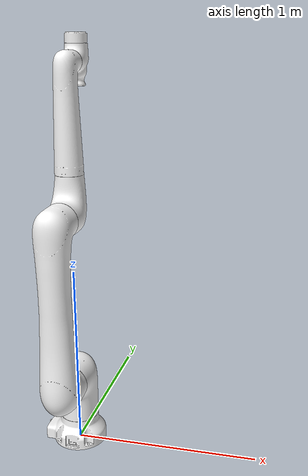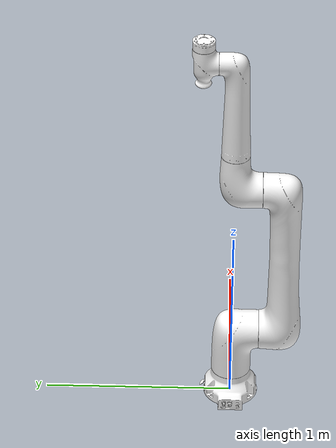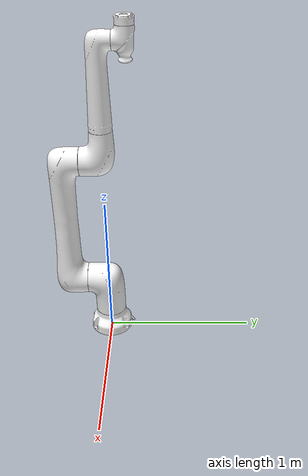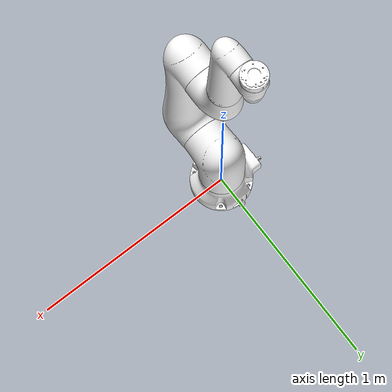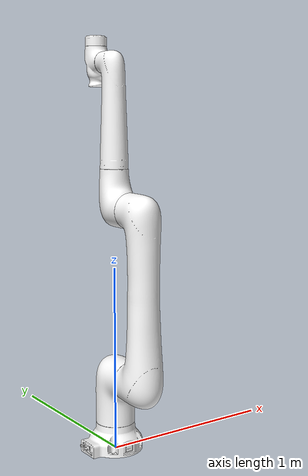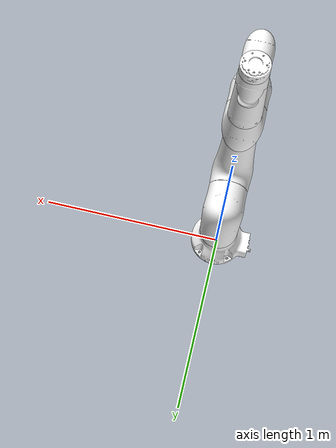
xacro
<?xml version="1.0"?>
<robot xmlns:xacro="http://www.ros.org/wiki/xacro" name="xMateCR20">
    <xacro:arg name="initial_positions_file" default="initial_positions.yaml" />

    <!-- Import xMateCR20 urdf file -->
    <xacro:include filename="$(find rokae_description)/urdf/xMateCR20.urdf.xacro" />

    <!-- Import control_xacro -->
    <xacro:include filename="xMateCR20.ros2_control.xacro" />

    <xacro:xMateCR20_ros2_control name="FakeSystem" initial_positions_file="$(arg initial_positions_file)"/>

</robot>

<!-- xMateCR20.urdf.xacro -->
<robot xmlns:xacro="http://www.ros.org/wiki/xacro" name="xMateCR20">
  <!-- Constants for robot dimensions -->
  <material name="black">
    <color rgba="0.0 0.0 0.0 1.0"/>
  </material>
  <material name="blue">
    <color rgba="0.0 0.0 0.8 1.0"/>
  </material>
  <material name="green">
    <color rgba="0.0 0.8 0.0 1.0"/>
  </material>
  <material name="grey">
    <color rgba="0.2 0.2 0.2 1.0"/>
  </material>
  <material name="orange">
    <color rgba="1.0 0.423529411765 0.0392156862745 1.0"/>
  </material>
  <material name="brown">
    <color rgba="0.870588235294 0.811764705882 0.764705882353 1.0"/>
  </material>
  <material name="red">
    <color rgba="0.8 0.0 0.0 1.0"/>
  </material>
  <material name="white">
    <color rgba="1.0 1.0 1.0 1.0"/>
  </material>
  <material name="Beige">
    <color rgba="1.0 0.784 0.5765 1.0"/>
  </material>
  <!-- Used for fixing robot to Gazebo 'base_link' -->
  <link name="world"/>
  <joint name="fixed" type="fixed">
    <parent link="world"/>
    <child link="xMateCR20_base"/>
  </joint>
  <!--base-->
  <link name="xMateCR20_base">
    <visual>
      <geometry>
        <mesh filename="package://rokae_description/meshes/xMateCR20/xMateCR20_base.stl" scale="0.001 0.001 0.001"/>
      </geometry>
      <origin rpy="0 0 0" xyz="0.0 0.0 0.0"/>
      <material name="white"/>
    </visual>
    <collision>
      <geometry>
        <mesh filename="package://rokae_description/meshes/xMateCR20/xMateCR20_base.stl" scale="0.001 0.001 0.001"/>
      </geometry>
      <origin rpy="0 0 0" xyz="0.0 0.0 0.0"/>
    </collision>
  </link>
  <joint name="xMateCR20_joint_1" type="revolute">
    <parent link="xMateCR20_base"/>
    <child link="xMateCR20_link1"/>
    <limit effort="762" lower="-3.0543" upper="3.0543" velocity="2.0943951023931953"/>
    <axis xyz="0 0 1"/>
    <origin rpy="0 0 0" xyz="0.0 0.0 0.418"/>
  </joint>
  <transmission name="tran1">
    <type>transmission_interface/SimpleTransmission</type>
    <joint name="xMateCR20_joint_7">
      <hardwareInterface>EffortJointInterface</hardwareInterface>
    </joint>
    <actuator name="motor1">
      <hardwareInterface>EffortJointInterface</hardwareInterface>
      <mechanicalReduction>1</mechanicalReduction>
    </actuator>
  </transmission>
  <!--link 1-->
  <link name="xMateCR20_link1">
    <visual>
      <geometry>
        <mesh filename="package://rokae_description/meshes/xMateCR20/xMateCR20_link1.stl" scale="0.001 0.001 0.001"/>
      </geometry>
      <origin rpy="0 0 0" xyz="0 0 0"/>
      <material name="white"/>
    </visual>
    <inertial>
      <mass value="18.196"/>
      <inertia ixx="0.30851470" ixy="0.00012560" ixz="0.00039399" iyy="0.25071167" iyz="-0.08923631" izz="0.15494443"/>
      <origin rpy="0 0 0" xyz="0.00023999999999999998 -0.054541 0.325133"/>
    </inertial>
    <collision>
      <geometry>
        <mesh filename="package://rokae_description/meshes/xMateCR20/xMateCR20_link1.stl" scale="0.001 0.001 0.001"/>
      </geometry>
      <origin rpy="0 0 0" xyz="0 0 0"/>
    </collision>
  </link>
  <joint name="xMateCR20_joint_2" type="revolute">
    <parent link="xMateCR20_link1"/>
    <child link="xMateCR20_link2"/>
    <limit effort="762" lower="-3.0543" upper="3.0543" velocity="2.0943951023931953"/>
    <axis xyz="0 1 0"/>
    <origin rpy="0 0 0" xyz="0.0 0.0 0.0"/>
  </joint>
  <transmission name="tran2">
    <type>transmission_interface/SimpleTransmission</type>
    <joint name="xmate_joint_2">
      <hardwareInterface>EffortJointInterface</hardwareInterface>
    </joint>
    <actuator name="motor2">
      <hardwareInterface>EffortJointInterface</hardwareInterface>
      <mechanicalReduction>1</mechanicalReduction>
    </actuator>
  </transmission>
  <!--link 2-->
  <link name="xMateCR20_link2">
    <visual>
      <geometry>
        <mesh filename="package://rokae_description/meshes/xMateCR20/xMateCR20_link2.stl" scale="0.001 0.001 0.001"/>
      </geometry>
      <origin rpy="0 0 0" xyz="0 0 0.0"/>
      <material name="white"/>
    </visual>
    <inertial>
      <mass value="22.846"/>
      <inertia ixx="3.46404992" ixy="-0.00056210" ixz="0.00073117" iyy="3.44023407" iyz="-0.04298666" izz="0.15753355"/>
      <origin rpy="0 0 0" xyz="0.00035099999999999997 -0.222505 0.392301"/>
    </inertial>
    <collision>
      <geometry>
        <mesh filename="package://rokae_description/meshes/xMateCR20/xMateCR20_link2.stl" scale="0.001 0.001 0.001"/>
      </geometry>
      <origin rpy="0 0 0" xyz="0 0 0.0"/>
    </collision>
  </link>
  <joint name="xMateCR20_joint_3" type="revolute">
    <parent link="xMateCR20_link2"/>
    <child link="xMateCR20_link3"/>
    <limit effort="436" lower="-2.9671" upper="2.9671" velocity="2.0943951023931953"/>
    <axis xyz="0 -1 0"/>
    <origin rpy="0 0 0" xyz="0.0 0.0 0.9"/>
  </joint>
  <transmission name="tran3">
    <type>transmission_interface/SimpleTransmission</type>
    <joint name="xmate_joint_3">
      <hardwareInterface>EffortJointInterface</hardwareInterface>
    </joint>
    <actuator name="motor3">
      <hardwareInterface>EffortJointInterface</hardwareInterface>
      <mechanicalReduction>1</mechanicalReduction>
    </actuator>
  </transmission>
  <!--link 3-->
  <link name="xMateCR20_link3">
    <visual>
      <geometry>
        <mesh filename="package://rokae_description/meshes/xMateCR20/xMateCR20_link3.stl" scale="0.001 0.001 0.001"/>
      </geometry>
      <origin rpy="0 0 0" xyz="0 0 0"/>
      <material name="white"/>
    </visual>
    <inertial>
      <mass value="7.838"/>
      <inertia ixx="0.11155065" ixy="0.00000007" ixz="-0.00000590" iyy="0.07601873" iyz="-0.03480542" izz="0.06724796"/>
      <origin rpy="0 0 0" xyz="1.1e-05 0.07265300000000001 0.060502"/>
    </inertial>
    <collision>
      <geometry>
        <mesh filename="package://rokae_description/meshes/xMateCR20/xMateCR20_link3.stl" scale="0.001 0.001 0.001"/>
      </geometry>
      <origin rpy="0 0 0" xyz="0 0 0"/>
    </collision>
  </link>
  <joint name="xMateCR20_joint_4" type="revolute">
    <parent link="xMateCR20_link3"/>
    <child link="xMateCR20_link4"/>
    <limit effort="194" lower="-3.0543" upper="3.0543" velocity="3.141592653589793"/>
    <!--     lower="-3.0543" upper="3.0543" -->
    <axis xyz="0 0 1"/>
    <origin rpy="0 0 0" xyz="0.0 0.0 0.75"/>
  </joint>
  <transmission name="tran4">
    <type>transmission_interface/SimpleTransmission</type>
    <joint name="xmate_joint_4">
      <hardwareInterface>EffortJointInterface</hardwareInterface>
    </joint>
    <actuator name="motor4">
      <hardwareInterface>EffortJointInterface</hardwareInterface>
      <mechanicalReduction>1</mechanicalReduction>
    </actuator>
  </transmission>
  <!--link 4-->
  <link name="xMateCR20_link4">
    <visual>
      <geometry>
        <mesh filename="package://rokae_description/meshes/xMateCR20/xMateCR20_link4.stl" scale=".001 0.001 0.001"/>
      </geometry>
      <origin rpy="0 0 0" xyz="0.0 0.0 0.0"/>
      <material name="white"/>
    </visual>
    <inertial>
      <mass value="6.943"/>
      <inertia ixx="0.36721860" ixy="0.00001459" ixz="-0.00002251" iyy="0.36403022" iyz="-0.02428836" izz="0.02251059"/>
      <origin rpy="0 0 0" xyz="-4.9000000000000005e-05 -0.012031 -0.294371"/>
    </inertial>
    <collision>
      <geometry>
        <mesh filename="package://rokae_description/meshes/xMateCR20/xMateCR20_link4.stl" scale="0.001 0.001 0.001"/>
      </geometry>
      <origin rpy="0 0 0" xyz="0.0 0.0 0.0"/>
    </collision>
  </link>
  <joint name="xMateCR20_joint_5" type="revolute">
    <parent link="xMateCR20_link4"/>
    <child link="xMateCR20_link5"/>
    <limit effort="102" lower="-3.0543" upper="3.0543" velocity="4.084070449666731"/>
    <axis xyz="0 -1 0"/>
    <origin rpy="0 0 0" xyz="0.0 0.17 0.0"/>
  </joint>
  <transmission name="tran5">
    <type>transmission_interface/SimpleTransmission</type>
    <joint name="xmate_joint_5">
      <hardwareInterface>EffortJointInterface</hardwareInterface>
    </joint>
    <actuator name="motor5">
      <hardwareInterface>EffortJointInterface</hardwareInterface>
      <mechanicalReduction>1</mechanicalReduction>
    </actuator>
  </transmission>
  <!--link 5-->
  <link name="xMateCR20_link5">
    <visual>
      <geometry>
        <mesh filename="package://rokae_description/meshes/xMateCR20/xMateCR20_link5.stl" scale="0.001 0.001 0.001"/>
      </geometry>
      <origin rpy="0 0 0" xyz="0 0 0"/>
      <material name="white"/>
    </visual>
    <inertial>
      <mass value="2.939"/>
      <inertia ixx="0.01426615" ixy="-0.00000568" ixz="-0.00000948" iyy="0.00796211" iyz="-0.00209867" izz="0.01079183"/>
      <origin rpy="0 0 0" xyz="6.500000000000001e-05 0.037814999999999994 0.018831"/>
    </inertial>
    <collision>
      <geometry>
        <mesh filename="package://rokae_description/meshes/xMateCR20/xMateCR20_link5.stl" scale="0.001 0.001 0.001"/>
      </geometry>
      <origin rpy="0 0 0" xyz="0 0 0"/>
    </collision>
  </link>
  <joint name="xMateCR20_joint_6" type="revolute">
    <parent link="xMateCR20_link5"/>
    <child link="xMateCR20_link6"/>
    <limit effort="102" lower="-3.0543" upper="3.0543" velocity="4.084070449666731"/>
    <axis xyz="0 0 1"/>
    <origin rpy="0.0 0.0 0" xyz="0.0 0.0 0.14"/>
  </joint>
  <transmission name="tran6">
    <type>transmission_interface/SimpleTransmission</type>
    <joint name="xmate_joint_6">
      <hardwareInterface>EffortJointInterface</hardwareInterface>
    </joint>
    <actuator name="motor6">
      <hardwareInterface>EffortJointInterface</hardwareInterface>
      <mechanicalReduction>1</mechanicalReduction>
    </actuator>
  </transmission>
  <!--link 6-->
  <link name="xMateCR20_link6">
    <visual>
      <geometry>
        <mesh filename="package://rokae_description/meshes/xMateCR20/xMateCR20_link6.stl" scale="0.001 0.001 0.001"/>
      </geometry>
      <origin rpy="0 0 0" xyz="0.0 0.0 0.0"/>
      <material name="white"/>
    </visual>
    <inertial>
      <mass value="1.586"/>
      <inertia ixx="0.00340881" ixy="-0.00000059" ixz="-0.00000191" iyy="0.00341954" iyz="0.00000107" izz="0.00202228"/>
      <origin rpy="0 0 0" xyz="-3.1e-05 5.2e-05 -0.052799"/>
    </inertial>
    <collision>
      <geometry>
        <mesh filename="package://rokae_description/meshes/xMateCR20/xMateCR20_link6.stl" scale="0.001 0.001 0.001"/>
      </geometry>
      <origin rpy="0 0 0" xyz="0.0 0.0 0.0"/>
    </collision>
  </link>
</robot>
